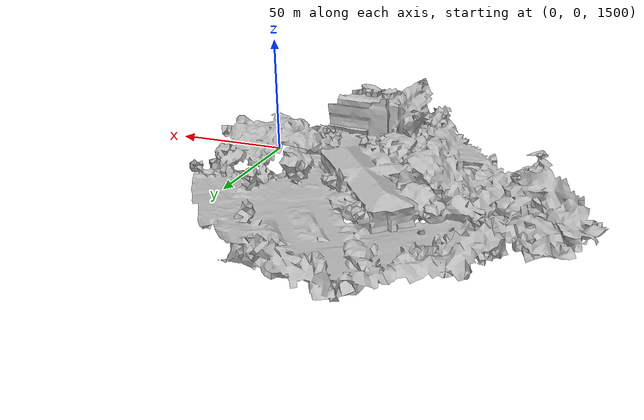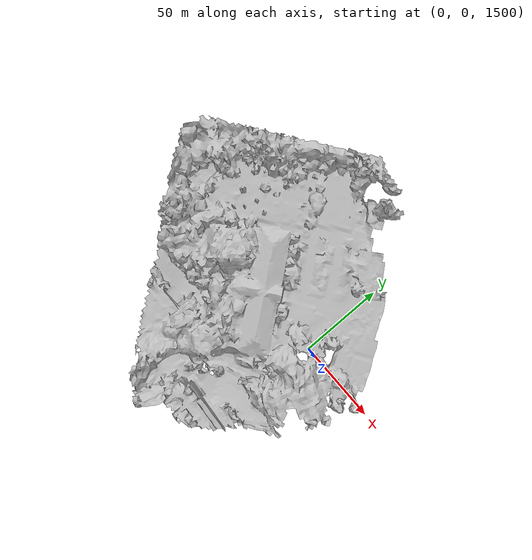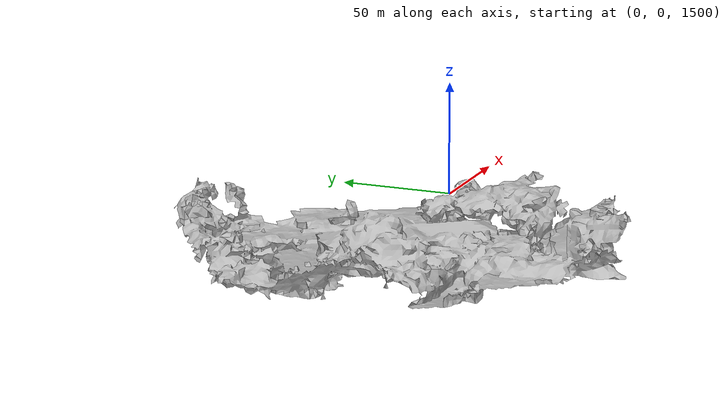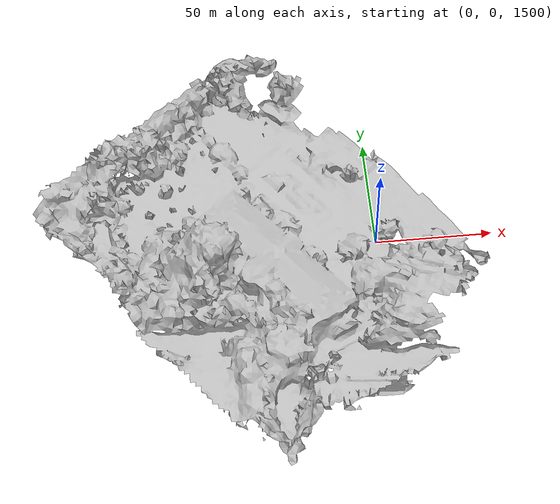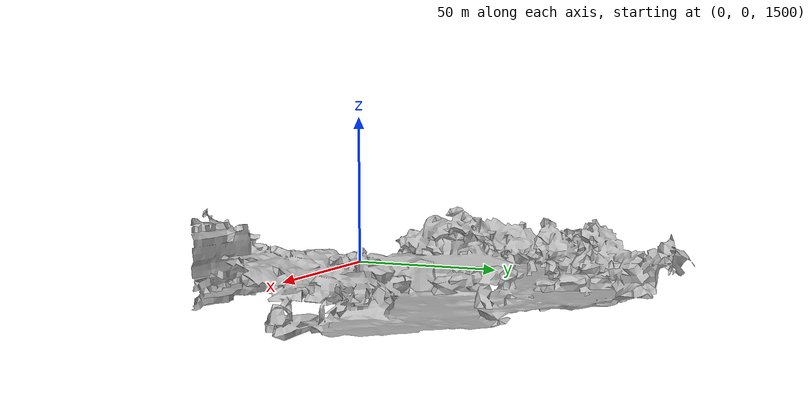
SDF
<!--f12 upb block model and base for more models sdf programming-->
<?xml version='1.0'?>
<sdf version='1.5'>
  <model name='12_block'>
    <static>true</static>
    <allow_auto_disable>true</allow_auto_disable>
    <pose>0 0 0 0 0 0</pose>
    <link name="12_block_link">
      <gravity>false</gravity>
      <enable_wind>false</enable_wind>
      <self_collide>false</self_collide>
      <kinematic>false</kinematic>
      <pose>0 0 0 0 0 0</pose>
      <inertial>
          <pose>0 0 0 0 0 0</pose>
          <mass>1</mass>
          <inertia>
          <ixx>0</ixx>
          <ixy>0</ixy>
          <ixz>0</ixz>
          <iyy>0</iyy>
          <iyz>0</iyz>
          <izz>0</izz>
        </inertia>
      </inertial>
      <visual name="12_block_visual">
        <pose>0 0 0 0 0 0</pose>
        <geometry>
          <mesh>
            <uri>model://UPB_12_BLOCK/meshes/B12.obj</uri>
          </mesh>
        </geometry>
        <transparency>0</transparency>
        <cast_shadows>1</cast_shadows>
      </visual>
      <collision name="12_block_collisions">
          <pose>0 0 0 0 0 0</pose>
          <max_contacts>1000</max_contacts>
          <geometry>
          <mesh>
            <uri>model://UPB_12_BLOCK/meshes/b12_collision.obj</uri>
          </mesh>
        </geometry>
      </collision>
        <surface>
          <contact>
            <ode>
              <min_depth>0.001</min_depth>
              <max_vel>0</max_vel>
            </ode>
          </contact>
          <friction>
            <ode/>
          </friction>
        </surface>
    </link>
  </model>
</sdf>
